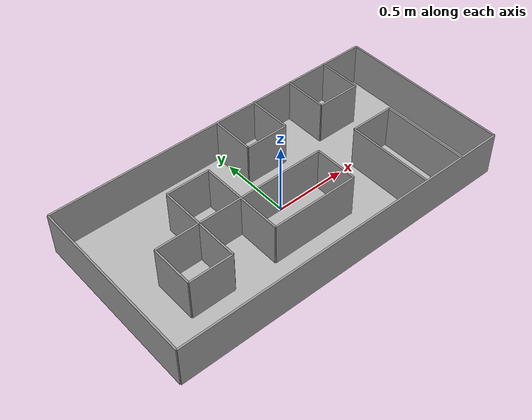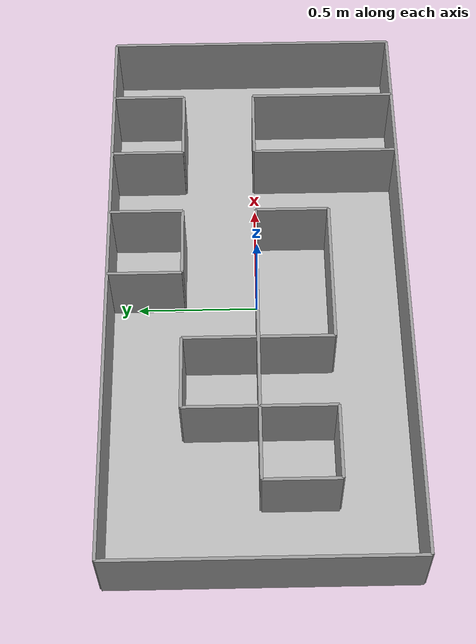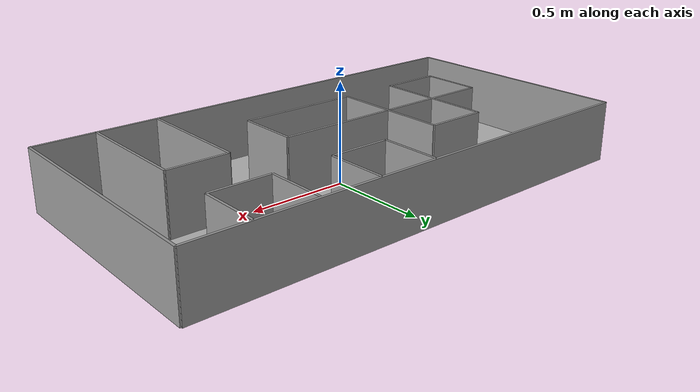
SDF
<sdf version="1.7">
 <world name="default">
  <light name="sun" type="directional">
   <pose>0 0 10 0 -0 0</pose>
   <diffuse>0.8 0.8 0.8 1</diffuse>
   <specular>0.2 0.2 0.2 1</specular>
   <attenuation>
    <range>1000</range>
    <constant>0.9</constant>
    <linear>0.01</linear>
    <quadratic>0.001</quadratic>
   </attenuation>
   <direction>-0.5 0.1 -0.9</direction>
   <spot><inner_angle>0</inner_angle><outer_angle>0</outer_angle><falloff>0</falloff></spot>
  </light>
  <model name="my_ground_plane">
   <static>1</static>
   <link name="link">
    <collision name="collision">
     <geometry><plane><normal>0 0 1</normal><size>2.4384 1.2192</size></plane></geometry>
     <surface><friction><ode><mu>100</mu><mu2>50</mu2></ode></friction></surface>
    </collision>
    <visual name="visual">
     <cast_shadows>0</cast_shadows>
     <geometry><plane><normal>0 0 1</normal><size>2.4384 1.2192</size></plane></geometry>
     <material>
      <script>
       <uri>models://ground/materials/scripts/</uri>
       <uri>models://ground/materials/textures/</uri>
       <name>MyGroundPlane/Image</name>
      </script>
     </material>
    </visual>
   </link>
  </model>
  <gravity>0 0 -9.8</gravity>
  <magnetic_field>6e-06 2.3e-05 -4.2e-05</magnetic_field>
  <atmosphere type="adiabatic"/>
  <physics type="ode">
   <max_step_size>0.001</max_step_size>
   <real_time_factor>1</real_time_factor>
   <real_time_update_rate>1000</real_time_update_rate>
  </physics>
  <scene><ambient>0.4 0.4 0.4 1</ambient><background>0.7 0.7 0.7 1</background><shadows>1</shadows></scene>
  <spherical_coordinates>
   <surface_model>EARTH_WGS84</surface_model>
   <latitude_deg>0</latitude_deg>
   <longitude_deg>0</longitude_deg>
   <elevation>0</elevation>
   <heading_deg>0</heading_deg>
  </spherical_coordinates>
  <model name="FirstWorld">
   <pose>-1.2192 0 0 0 -0 0</pose>
   <link name="LeftWall">
    <collision name="LeftWall_Collision">
     <geometry><box><size>1.2192 0.0127 0.3048</size></box></geometry>
     <pose>0 0 0.1524 0 -0 0</pose>
    </collision>
    <visual name="LeftWall_Visual">
     <pose>0 0 0.1524 0 -0 0</pose>
     <geometry><box><size>1.2192 0.0127 0.3048</size></box></geometry>
     <material>
      <script><uri>file://media/materials/scripts/gazebo.material</uri><name>Gazebo/Grey</name></script>
      <ambient>1 1 1 1</ambient>
     </material>
     <meta><layer>0</layer></meta>
    </visual>
    <pose>0 0 0 0 0 -1.5708</pose>
   </link>
   <link name="TopWall">
    <collision name="TopWall_Collision">
     <geometry><box><size>2.4384 0.0127 0.3048</size></box></geometry>
     <pose>0 0 0.1524 0 -0 0</pose>
    </collision>
    <visual name="TopWall_Visual">
     <pose>0 0 0.1524 0 -0 0</pose>
     <geometry><box><size>2.4384 0.0127 0.3048</size></box></geometry>
     <material>
      <script><uri>file://media/materials/scripts/gazebo.material</uri><name>Gazebo/Grey</name></script>
      <ambient>1 1 1 1</ambient>
     </material>
     <meta><layer>0</layer></meta>
    </visual>
    <pose>1.2192 0.6096 0 0 -0 0</pose>
   </link>
   <link name="RightWall">
    <collision name="RightWall_Collision">
     <geometry><box><size>1.2192 0.0127 0.3048</size></box></geometry>
     <pose>0 0 0.1524 0 -0 0</pose>
    </collision>
    <visual name="RightWall_Visual">
     <pose>0 0 0.1524 0 -0 0</pose>
     <geometry><box><size>1.2192 0.0127 0.3048</size></box></geometry>
     <material>
      <script><uri>file://media/materials/scripts/gazebo.material</uri><name>Gazebo/Grey</name></script>
      <ambient>1 1 1 1</ambient>
     </material>
     <meta><layer>0</layer></meta>
    </visual>
    <pose>2.4384 0 0 0 -0 1.5708</pose>
   </link>
   <link name="BottomWall">
    <collision name="BottomWall_Collision">
     <geometry><box><size>2.4384 0.0127 0.3048</size></box></geometry>
     <pose>0 0 0.1524 0 -0 0</pose>
    </collision>
    <visual name="BottomWall_Visual">
     <pose>0 0 0.1524 0 -0 0</pose>
     <geometry><box><size>2.4384 0.0127 0.3048</size></box></geometry>
     <material>
      <script><uri>file://media/materials/scripts/gazebo.material</uri><name>Gazebo/Grey</name></script>
      <ambient>1 1 1 1</ambient>
     </material>
     <meta><layer>0</layer></meta>
    </visual>
    <pose>1.2192 -0.6096 0 0 -0 0</pose>
   </link>
   <link name="Wall1">
    <collision name="Wall1_Collision">
     <geometry><box><size>0.3048 0.0127 0.3048</size></box></geometry>
     <pose>0 0 0.1524 0 -0 0</pose>
    </collision>
    <visual name="Wall1_Visual">
     <pose>0 0 0.1524 0 -0 0</pose>
     <geometry><box><size>0.3048 0.0127 0.3048</size></box></geometry>
     <material>
      <script><uri>file://media/materials/scripts/gazebo.material</uri><name>Gazebo/Grey</name></script>
      <ambient>1 1 1 1</ambient>
     </material>
     <meta><layer>0</layer></meta>
    </visual>
    <pose>1.2192 0.4572 0 0 -0 1.5708</pose>
   </link>
   <link name="Wall2">
    <collision name="Wall2_Collision">
     <geometry><box><size>0.3048 0.0127 0.3048</size></box></geometry>
     <pose>0 0 0.1524 0 -0 0</pose>
    </collision>
    <visual name="Wall2_Visual">
     <pose>0 0 0.1524 0 -0 0</pose>
     <geometry><box><size>0.3048 0.0127 0.3048</size></box></geometry>
     <material>
      <script><uri>file://media/materials/scripts/gazebo.material</uri><name>Gazebo/Grey</name></script>
      <ambient>1 1 1 1</ambient>
     </material>
     <meta><layer>0</layer></meta>
    </visual>
    <pose>1.3716 0.3048 0 0 -0 0</pose>
   </link>
   <link name="Wall3">
    <collision name="Wall3_Collision">
     <geometry><box><size>0.3048 0.0127 0.3048</size></box></geometry>
     <pose>0 0 0.1524 0 -0 0</pose>
    </collision>
    <visual name="Wall3_Visual">
     <pose>0 0 0.1524 0 -0 0</pose>
     <geometry><box><size>0.3048 0.0127 0.3048</size></box></geometry>
     <material>
      <script><uri>file://media/materials/scripts/gazebo.material</uri><name>Gazebo/Grey</name></script>
      <ambient>1 1 1 1</ambient>
     </material>
     <meta><layer>0</layer></meta>
    </visual>
    <pose>1.524 0.4572 0 0 -0 1.5708</pose>
   </link>
   <link name="Wall4">
    <collision name="Wall4_Collision">
     <geometry><box><size>0.3048 0.0127 0.3048</size></box></geometry>
     <pose>0 0 0.1524 0 -0 0</pose>
    </collision>
    <visual name="Wall4_Visual">
     <pose>0 0 0.1524 0 -0 0</pose>
     <geometry><box><size>0.3048 0.0127 0.3048</size></box></geometry>
     <material>
      <script><uri>file://media/materials/scripts/gazebo.material</uri><name>Gazebo/Grey</name></script>
      <ambient>1 1 1 1</ambient>
     </material>
     <meta><layer>0</layer></meta>
    </visual>
    <pose>1.8288 0.4572 0 0 -0 1.5708</pose>
   </link>
   <link name="Wall5">
    <collision name="Wall5_Collision">
     <geometry><box><size>0.3048 0.0127 0.3048</size></box></geometry>
     <pose>0 0 0.1524 0 -0 0</pose>
    </collision>
    <visual name="Wall5_Visual">
     <pose>0 0 0.1524 0 -0 0</pose>
     <geometry><box><size>0.3048 0.0127 0.3048</size></box></geometry>
     <material>
      <script><uri>file://media/materials/scripts/gazebo.material</uri><name>Gazebo/Grey</name></script>
      <ambient>1 1 1 1</ambient>
     </material>
     <meta><layer>0</layer></meta>
    </visual>
    <pose>1.9812 0.3048 0 0 -0 0</pose>
   </link>
   <link name="Wall6">
    <collision name="Wall6_Collision">
     <geometry><box><size>0.3048 0.0127 0.3048</size></box></geometry>
     <pose>0 0 0.1524 0 -0 0</pose>
    </collision>
    <visual name="Wall6_Visual">
     <pose>0 0 0.1524 0 -0 0</pose>
     <geometry><box><size>0.3048 0.0127 0.3048</size></box></geometry>
     <material>
      <script><uri>file://media/materials/scripts/gazebo.material</uri><name>Gazebo/Grey</name></script>
      <ambient>1 1 1 1</ambient>
     </material>
     <meta><layer>0</layer></meta>
    </visual>
    <pose>2.1336 0.4572 0 0 -0 1.5708</pose>
   </link>
   <link name="Wall7">
    <collision name="Wall7_Collision">
     <geometry><box><size>0.3048 0.0127 0.3048</size></box></geometry>
     <pose>0 0 0.1524 0 -0 0</pose>
    </collision>
    <visual name="Wall7_Visual">
     <pose>0 0 0.1524 0 -0 0</pose>
     <geometry><box><size>0.3048 0.0127 0.3048</size></box></geometry>
     <material>
      <script><uri>file://media/materials/scripts/gazebo.material</uri><name>Gazebo/Grey</name></script>
      <ambient>1 1 1 1</ambient>
     </material>
     <meta><layer>0</layer></meta>
    </visual>
    <pose>0.3048 -0.1524 0 0 -0 1.5708</pose>
   </link>
   <link name="Wall8">
    <collision name="Wall8_Collision">
     <geometry><box><size>1.2192 0.0127 0.3048</size></box></geometry>
     <pose>0 0 0.1524 0 -0 0</pose>
    </collision>
    <visual name="Wall8_Visual">
     <pose>0 0 0.1524 0 -0 0</pose>
     <geometry><box><size>1.2192 0.0127 0.3048</size></box></geometry>
     <material>
      <script><uri>file://media/materials/scripts/gazebo.material</uri><name>Gazebo/Grey</name></script>
      <ambient>1 1 1 1</ambient>
     </material>
     <meta><layer>0</layer></meta>
    </visual>
    <pose>0.9144 0 0 0 -0 0</pose>
   </link>
   <link name="Wall9">
    <collision name="Wall9_Collision">
     <geometry><box><size>0.6096 0.0127 0.3048</size></box></geometry>
     <pose>0 0 0.1524 0 -0 0</pose>
    </collision>
    <visual name="Wall9_Visual">
     <pose>0 0 0.1524 0 -0 0</pose>
     <geometry><box><size>0.6096 0.0127 0.3048</size></box></geometry>
     <material>
      <script><uri>file://media/materials/scripts/gazebo.material</uri><name>Gazebo/Grey</name></script>
      <ambient>1 1 1 1</ambient>
     </material>
     <meta><layer>0</layer></meta>
    </visual>
    <pose>0.6096 0 0 0 -0 1.5708</pose>
   </link>
   <link name="Wall10">
    <collision name="Wall10_Collision">
     <geometry><box><size>0.3048 0.0127 0.3048</size></box></geometry>
     <pose>0 0 0.1524 0 -0 0</pose>
    </collision>
    <visual name="Wall10_Visual">
     <pose>0 0 0.1524 0 -0 0</pose>
     <geometry><box><size>0.3048 0.0127 0.3048</size></box></geometry>
     <material>
      <script><uri>file://media/materials/scripts/gazebo.material</uri><name>Gazebo/Grey</name></script>
      <ambient>1 1 1 1</ambient>
     </material>
     <meta><layer>0</layer></meta>
    </visual>
    <pose>0.762 0.3048 0 0 -0 0</pose>
   </link>
   <link name="Wall11">
    <collision name="Wall11_Collision">
     <geometry><box><size>0.6096 0.0127 0.3048</size></box></geometry>
     <pose>0 0 0.1524 0 -0 0</pose>
    </collision>
    <visual name="Wall11_Visual">
     <pose>0 0 0.1524 0 -0 0</pose>
     <geometry><box><size>0.6096 0.0127 0.3048</size></box></geometry>
     <material>
      <script><uri>file://media/materials/scripts/gazebo.material</uri><name>Gazebo/Grey</name></script>
      <ambient>1 1 1 1</ambient>
     </material>
     <meta><layer>0</layer></meta>
    </visual>
    <pose>0.9144 0 0 0 -0 1.5708</pose>
   </link>
   <link name="Wall12">
    <collision name="Wall12_Collision">
     <geometry><box><size>0.3048 0.0127 0.3048</size></box></geometry>
     <pose>0 0 0.1524 0 -0 0</pose>
    </collision>
    <visual name="Wall12_Visual">
     <pose>0 0 0.1524 0 -0 0</pose>
     <geometry><box><size>0.3048 0.0127 0.3048</size></box></geometry>
     <material>
      <script><uri>file://media/materials/scripts/gazebo.material</uri><name>Gazebo/Grey</name></script>
      <ambient>1 1 1 1</ambient>
     </material>
     <meta><layer>0</layer></meta>
    </visual>
    <pose>1.524 -0.1524 0 0 -0 1.5708</pose>
   </link>
   <link name="Wall13">
    <collision name="Wall13_Collision">
     <geometry><box><size>0.6096 0.0127 0.3048</size></box></geometry>
     <pose>0 0 0.1524 0 -0 0</pose>
    </collision>
    <visual name="Wall13_Visual">
     <pose>0 0 0.1524 0 -0 0</pose>
     <geometry><box><size>0.6096 0.0127 0.3048</size></box></geometry>
     <material>
      <script><uri>file://media/materials/scripts/gazebo.material</uri><name>Gazebo/Grey</name></script>
      <ambient>1 1 1 1</ambient>
     </material>
     <meta><layer>0</layer></meta>
    </visual>
    <pose>1.2192 -0.3048 0 0 -0 0</pose>
   </link>
   <link name="Wall14">
    <collision name="Wall14_Collision">
     <geometry><box><size>0.3048 0.0127 0.3048</size></box></geometry>
     <pose>0 0 0.1524 0 -0 0</pose>
    </collision>
    <visual name="Wall14_Visual">
     <pose>0 0 0.1524 0 -0 0</pose>
     <geometry><box><size>0.3048 0.0127 0.3048</size></box></geometry>
     <material>
      <script><uri>file://media/materials/scripts/gazebo.material</uri><name>Gazebo/Grey</name></script>
      <ambient>1 1 1 1</ambient>
     </material>
     <meta><layer>0</layer></meta>
    </visual>
    <pose>0.4572 -0.3048 0 0 -0 0</pose>
   </link>
   <link name="Wall15">
    <collision name="Wall15_Collision">
     <geometry><box><size>0.6096 0.0127 0.3048</size></box></geometry>
     <pose>0 0 0.1524 0 -0 0</pose>
    </collision>
    <visual name="Wall15_Visual">
     <pose>0 0 0.1524 0 -0 0</pose>
     <geometry><box><size>0.6096 0.0127 0.3048</size></box></geometry>
     <material>
      <script><uri>file://media/materials/scripts/gazebo.material</uri><name>Gazebo/Grey</name></script>
      <ambient>1 1 1 1</ambient>
     </material>
     <meta><layer>0</layer></meta>
    </visual>
    <pose>1.8288 -0.3048 0 0 -0 1.5708</pose>
   </link>
   <link name="Wall16">
    <collision name="Wall16_Collision">
     <geometry><box><size>0.3048 0.0127 0.3048</size></box></geometry>
     <pose>0 0 0.1524 0 -0 0</pose>
    </collision>
    <visual name="Wall16_Visual">
     <pose>0 0 0.1524 0 -0 0</pose>
     <geometry><box><size>0.3048 0.0127 0.3048</size></box></geometry>
     <material>
      <script><uri>file://media/materials/scripts/gazebo.material</uri><name>Gazebo/Grey</name></script>
      <ambient>1 1 1 1</ambient>
     </material>
     <meta><layer>0</layer></meta>
    </visual>
    <pose>1.9812 0 0 0 -0 0</pose>
   </link>
   <link name="Wall17">
    <collision name="Wall17_Collision">
     <geometry><box><size>0.6096 0.0127 0.3048</size></box></geometry>
     <pose>0 0 0.1524 0 -0 0</pose>
    </collision>
    <visual name="Wall17_Visual">
     <pose>0 0 0.1524 0 -0 0</pose>
     <geometry><box><size>0.6096 0.0127 0.3048</size></box></geometry>
     <material>
      <script><uri>file://media/materials/scripts/gazebo.material</uri><name>Gazebo/Grey</name></script>
      <ambient>1 1 1 1</ambient>
     </material>
     <meta><layer>0</layer></meta>
    </visual>
    <pose>2.1336 -0.3048 0 0 -0 1.5708</pose>
   </link>
   <static>1</static>
  </model>
 </world>
</sdf>
